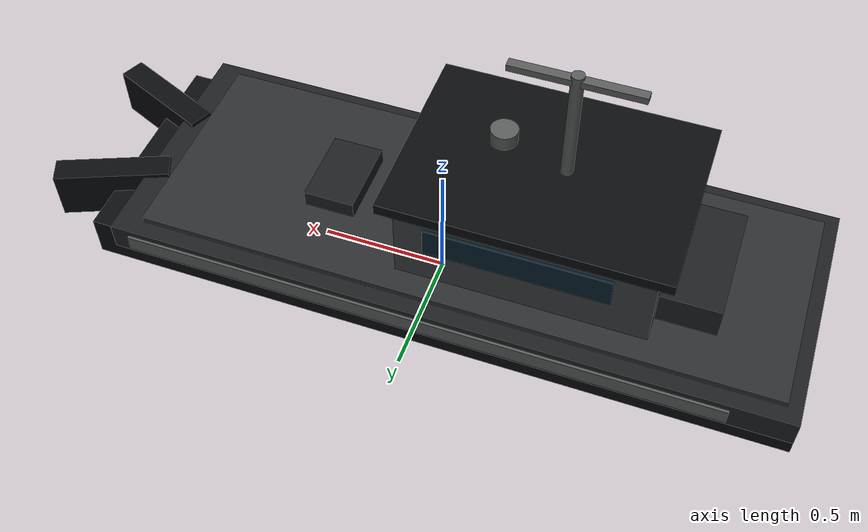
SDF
<?xml version='1.0' encoding='UTF-8'?>
<sdf version="1.10">
  <!-- Unity presentation geometry scale=0.18 -->
  <model name="sim332_enemy_ship">
    <pose>0 0 0.09 0 0 0</pose>
    <link name="hull">
      <gravity>false</gravity>
      <inertial>
        <mass>1100</mass>
        <inertia>
          <ixx>2900</ixx>
          <iyy>21000</iyy>
          <izz>23500</izz>
        </inertia>
      </inertial>
      <!-- Geometry mirrors SimulationBootstrap.BuildEnemyShip exactly. -->
      <collision name="lower_hull_collision">
        <pose>-0.081 0 0.0684 0 0 0</pose>
        <geometry>
          <box>
            <size>2.736 0.882 0.171</size>
          </box>
        </geometry>
      </collision>
      <collision name="upper_hull_collision">
        <pose>-0.135 0 0.1656 0 0 0</pose>
        <geometry>
          <box>
            <size>2.61 0.972 0.1116</size>
          </box>
        </geometry>
      </collision>
      <collision name="port_bow_collision">
        <pose>1.305 0.225 0.1368 0 0 0.4</pose>
        <geometry>
          <box>
            <size>0.45 0.099 0.2016</size>
          </box>
        </geometry>
      </collision>
      <collision name="starboard_bow_collision">
        <pose>1.305 -0.225 0.1368 0 0 -0.4</pose>
        <geometry>
          <box>
            <size>0.45 0.099 0.2016</size>
          </box>
        </geometry>
      </collision>
      <collision name="bridge_collision">
        <pose>-0.405 0 0.4212 0 0 0</pose>
        <geometry>
          <box>
            <size>0.945 0.675 0.333</size>
          </box>
        </geometry>
      </collision>
      <visual name="lower_hull">
        <pose>-0.081 0 0.0684 0 0 0</pose>
        <geometry>
          <box>
            <size>2.736 0.882 0.171</size>
          </box>
        </geometry>
        <material>
          <ambient>0.01575 0.0189 0.0225 1</ambient>
          <diffuse>0.035 0.042 0.05 1</diffuse>
          <specular>0.274 0.274 0.274 1</specular>
        </material>
      </visual>
      <visual name="upper_hull">
        <pose>-0.135 0 0.1656 0 0 0</pose>
        <geometry>
          <box>
            <size>2.61 0.972 0.1116</size>
          </box>
        </geometry>
        <material>
          <ambient>0.04725 0.05175 0.05625 1</ambient>
          <diffuse>0.105 0.115 0.125 1</diffuse>
          <specular>0.23 0.23 0.23 1</specular>
        </material>
      </visual>
      <visual name="main_deck">
        <pose>-0.162 0 0.2304 0 0 0</pose>
        <geometry>
          <box>
            <size>2.448 0.846 0.036</size>
          </box>
        </geometry>
        <material>
          <ambient>0.072 0.0765 0.081 1</ambient>
          <diffuse>0.16 0.17 0.18 1</diffuse>
          <specular>0.186 0.186 0.186 1</specular>
        </material>
      </visual>
      <visual name="port_bow">
        <pose>1.305 0.225 0.1368 0 0 0.4</pose>
        <geometry>
          <box>
            <size>0.45 0.099 0.2016</size>
          </box>
        </geometry>
        <material>
          <ambient>0.01575 0.0189 0.0225 1</ambient>
          <diffuse>0.035 0.042 0.05 1</diffuse>
        </material>
      </visual>
      <visual name="starboard_bow">
        <pose>1.305 -0.225 0.1368 0 0 -0.4</pose>
        <geometry>
          <box>
            <size>0.45 0.099 0.2016</size>
          </box>
        </geometry>
        <material>
          <ambient>0.01575 0.0189 0.0225 1</ambient>
          <diffuse>0.035 0.042 0.05 1</diffuse>
        </material>
      </visual>
      <visual name="bridge">
        <pose>-0.405 0 0.4212 0 0 0</pose>
        <geometry>
          <box>
            <size>0.945 0.675 0.333</size>
          </box>
        </geometry>
        <material>
          <ambient>0.099 0.1035 0.10575 1</ambient>
          <diffuse>0.22 0.23 0.235 1</diffuse>
          <specular>0.252 0.252 0.252 1</specular>
        </material>
      </visual>
      <visual name="front_windows">
        <pose>0.072 0 0.4644 0 0 0</pose>
        <geometry>
          <box>
            <size>0.0144 0.567 0.1188</size>
          </box>
        </geometry>
        <material>
          <ambient>0.01125 0.054 0.0765 1</ambient>
          <diffuse>0.025 0.12 0.17 1</diffuse>
          <specular>0.637 0.637 0.637 1</specular>
        </material>
      </visual>
      <visual name="port_windows">
        <pose>-0.387 0.342 0.4644 0 0 0</pose>
        <geometry>
          <box>
            <size>0.684 0.0126 0.1152</size>
          </box>
        </geometry>
        <material>
          <ambient>0.01125 0.054 0.0765 1</ambient>
          <diffuse>0.025 0.12 0.17 1</diffuse>
          <specular>0.637 0.637 0.637 1</specular>
        </material>
      </visual>
      <visual name="starboard_windows">
        <pose>-0.387 -0.342 0.4644 0 0 0</pose>
        <geometry>
          <box>
            <size>0.684 0.0126 0.1152</size>
          </box>
        </geometry>
        <material>
          <ambient>0.01125 0.054 0.0765 1</ambient>
          <diffuse>0.025 0.12 0.17 1</diffuse>
          <specular>0.637 0.637 0.637 1</specular>
        </material>
      </visual>
      <visual name="bridge_roof">
        <pose>-0.405 0 0.6084 0 0 0</pose>
        <geometry>
          <box>
            <size>1.053 0.756 0.0432</size>
          </box>
        </geometry>
        <material>
          <ambient>0.01575 0.0189 0.0225 1</ambient>
          <diffuse>0.035 0.042 0.05 1</diffuse>
        </material>
      </visual>
      <visual name="aft_equipment">
        <pose>-0.981 0 0.315 0 0 0</pose>
        <geometry>
          <box>
            <size>0.243 0.468 0.1296</size>
          </box>
        </geometry>
        <material>
          <ambient>0.04725 0.05175 0.05625 1</ambient>
          <diffuse>0.105 0.115 0.125 1</diffuse>
        </material>
      </visual>
      <visual name="fore_equipment">
        <pose>0.405 0 0.279 0 0 0</pose>
        <geometry>
          <box>
            <size>0.198 0.306 0.0684</size>
          </box>
        </geometry>
        <material>
          <ambient>0.04725 0.05175 0.05625 1</ambient>
          <diffuse>0.105 0.115 0.125 1</diffuse>
        </material>
      </visual>
      <visual name="mast">
        <pose>-0.459 0 0.8496 0 0 0</pose>
        <geometry>
          <cylinder>
            <radius>0.0234</radius>
            <length>0.459</length>
          </cylinder>
        </geometry>
        <material>
          <ambient>0.153 0.1575 0.1575 1</ambient>
          <diffuse>0.34 0.35 0.35 1</diffuse>
          <specular>0.241 0.241 0.241 1</specular>
        </material>
      </visual>
      <visual name="radar_bar">
        <pose>-0.459 0 1.053 0 0 0</pose>
        <geometry>
          <box>
            <size>0.477 0.036 0.0252</size>
          </box>
        </geometry>
        <material>
          <ambient>0.153 0.1575 0.1575 1</ambient>
          <diffuse>0.34 0.35 0.35 1</diffuse>
        </material>
      </visual>
      <visual name="radar_dome">
        <pose>-0.225 0 0.729 0 0 0</pose>
        <geometry>
          <cylinder>
            <radius>0.0504</radius>
            <length>0.054</length>
          </cylinder>
        </geometry>
        <material>
          <ambient>0.153 0.1575 0.1575 1</ambient>
          <diffuse>0.34 0.35 0.35 1</diffuse>
        </material>
      </visual>
      <visual name="port_rub_rail">
        <pose>-0.054 0.4896 0.1656 0 0 0</pose>
        <geometry>
          <box>
            <size>2.304 0.0144 0.0576</size>
          </box>
        </geometry>
        <material>
          <ambient>0.153 0.1575 0.1575 1</ambient>
          <diffuse>0.34 0.35 0.35 1</diffuse>
        </material>
      </visual>
      <visual name="starboard_rub_rail">
        <pose>-0.054 -0.4896 0.1656 0 0 0</pose>
        <geometry>
          <box>
            <size>2.304 0.0144 0.0576</size>
          </box>
        </geometry>
        <material>
          <ambient>0.153 0.1575 0.1575 1</ambient>
          <diffuse>0.34 0.35 0.35 1</diffuse>
        </material>
      </visual>
    </link>
    <plugin filename="libBoatWaveFollower.so" name="gz::sim::systems::BoatWaveFollower">
      <mean_z>0.1224</mean_z>
      <heave_amplitude>0.0108</heave_amplitude>
      <roll_amplitude>0.025</roll_amplitude>
      <pitch_amplitude>0.02</pitch_amplitude>
      <primary_frequency>0.9</primary_frequency>
      <secondary_frequency>1.35</secondary_frequency>
      <wave_number_x>0.24</wave_number_x>
      <wave_number_y>0.17</wave_number_y>
      <velocity_topic>cmd_vel</velocity_topic>
    </plugin>
    <plugin filename="libRandomVesselMotion.so" name="gz::sim::systems::RandomVesselMotion">
      <command_topic>cmd_vel</command_topic>
      <seed>332</seed>
      <min_speed>0.063</min_speed>
      <max_speed>0.207</max_speed>
      <min_cruise_seconds>5</min_cruise_seconds>
      <max_cruise_seconds>14</max_cruise_seconds>
      <min_stop_seconds>2</min_stop_seconds>
      <max_stop_seconds>6</max_stop_seconds>
      <stop_probability>0.28</stop_probability>
      <max_heading_change>1.75</max_heading_change>
      <turn_rate>0.22</turn_rate>
      <!-- Keep random motion in the open-water basin, not around the
           island-centred world origin. -->
      <operating_center_x>-14.4</operating_center_x>
      <operating_center_y>-80</operating_center_y>
      <operating_radius>22</operating_radius>
      <boundary_margin>4</boundary_margin>
      <enable_topic>/model/enemy_ship/motion_enable</enable_topic>
      <start_enabled>false</start_enabled>
    </plugin>
  </model>
</sdf>
